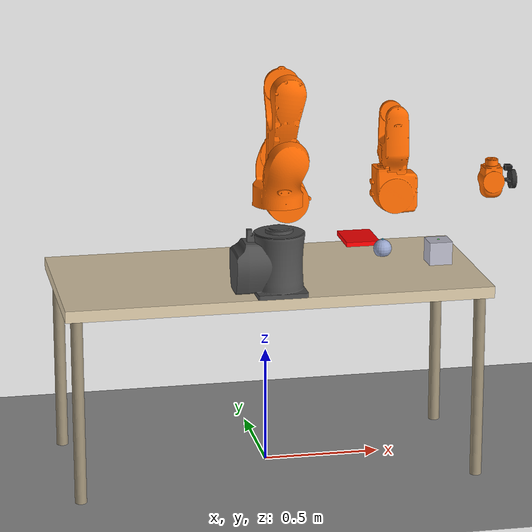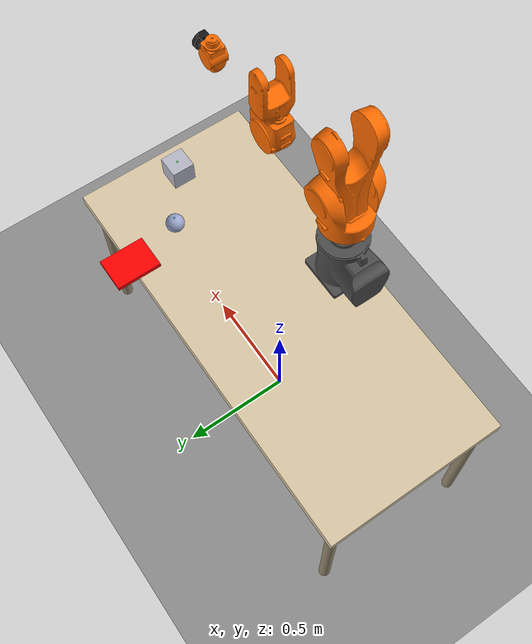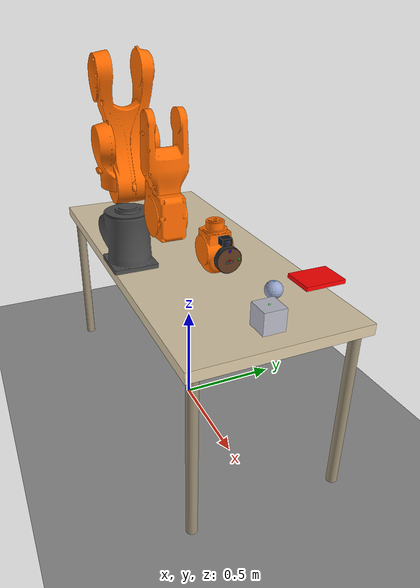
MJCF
<mujoco model="kuka_scene">

  <!-- ── Default free-camera framing ─────────────────────────────── -->
  <!-- center = middle of the table workspace, extent = scene radius   -->
  <!-- This makes the viewer open already zoomed in on the scene.      -->
  <statistic center="0 0.1 0.9" extent="1.5"/>

  <!-- ── Physics options (Task 2.4) ──────────────────────────────── -->
  <!--
    timestep = 0.001 s  → 1000 Hz physics
    gravity  = -9.81 m/s² in Z
    integrator = RK4    → better stability for rigid kinematic chains
    solver = Newton (default for MuJoCo 3.x)
  -->
  <option timestep="0.001"
          gravity="0 0 -9.81"
          integrator="RK4"/>

  <!-- ── Component modules ────────────────────────────────────────── -->
  <include file="includes/arm.xml"/>
  <include file="includes/table.xml"/>
  <include file="includes/lights.xml"/>
  <include file="includes/objects.xml"/>

  <!-- ── Visual / render settings ────────────────────────────────── -->
  <visual>
    <global offwidth="1280" offheight="720"/>
    <!-- Dim headlight so directional key/fill lights define the mood -->
    <headlight ambient="0.15 0.15 0.15" diffuse="0.2 0.2 0.2" specular="0 0 0"/>
  </visual>

  <!-- ── EM attachment equality constraint (Phase 6, Task 6.1) ──────── -->
  <!-- Single weld between em_pad and metal_box, initially inactive.     -->
  <!-- relpose is overwritten at runtime by em_activate() with the       -->
  <!-- CURRENT relative pose of the box w.r.t. em_pad at snap time —    -->
  <!-- so the box stays exactly at the EM face and is never rotated.     -->
  <equality>
    <weld name="em_weld" body1="em_pad" body2="metal_box"
          relpose="0 0 0 1 0 0 0" active="false"/>
  </equality>

  <!-- ── World-level geometry (not part of any swappable component) -->
  <worldbody>

    <!-- Ground plane: 10 m × 10 m, medium grey -->
    <geom name="floor"
          type="plane"
          size="5 5 0.1"
          rgba="0.55 0.55 0.55 1"
          condim="3"
          contype="2" conaffinity="3"/>

  </worldbody>

  <sensor>
    <!-- 7.1  Joint position sensors (1 float each) -->
    <jointpos name="sensor_pos_A1" joint="joint_a1"/>
    <jointpos name="sensor_pos_A2" joint="joint_a2"/>
    <jointpos name="sensor_pos_A3" joint="joint_a3"/>
    <jointpos name="sensor_pos_A4" joint="joint_a4"/>
    <jointpos name="sensor_pos_A5" joint="joint_a5"/>
    <jointpos name="sensor_pos_A6" joint="joint_a6"/>

    <!-- 7.2  Joint velocity sensors (1 float each) -->
    <jointvel name="sensor_vel_A1" joint="joint_a1"/>
    <jointvel name="sensor_vel_A2" joint="joint_a2"/>
    <jointvel name="sensor_vel_A3" joint="joint_a3"/>
    <jointvel name="sensor_vel_A4" joint="joint_a4"/>
    <jointvel name="sensor_vel_A5" joint="joint_a5"/>
    <jointvel name="sensor_vel_A6" joint="joint_a6"/>

    <!-- 7.3  Actuator force/torque sensors (1 float each) -->
    <actuatorfrc name="sensor_torque_A1" actuator="act_a1"/>
    <actuatorfrc name="sensor_torque_A2" actuator="act_a2"/>
    <actuatorfrc name="sensor_torque_A3" actuator="act_a3"/>
    <actuatorfrc name="sensor_torque_A4" actuator="act_a4"/>
    <actuatorfrc name="sensor_torque_A5" actuator="act_a5"/>
    <actuatorfrc name="sensor_torque_A6" actuator="act_a6"/>

    <!-- 7.4  End-effector force + torque at EM contact site (3 floats each) -->
    <force  name="sensor_ee_force"  site="em_contact_site"/>
    <torque name="sensor_ee_torque" site="em_contact_site"/>

    <!-- 7.5  Proximity rangefinder at EM contact site (1 float) -->
    <!--      Reports distance to first geom hit along site's local +Z axis. -->
    <!--      Returns -1.0 when no surface is hit within range.              -->
    <rangefinder name="sensor_proximity" site="em_contact_site"/>
  </sensor>

</mujoco>

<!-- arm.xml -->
<mujoco>
  <compiler meshdir="../assets/urdf/meshes/" angle="radian"/>

  <asset>
    <mesh name="base_link" content_type="model/stl" file="base_link.stl"/>
    <mesh name="link_1"    content_type="model/stl" file="link_1.stl"/>
    <mesh name="link_2"    content_type="model/stl" file="link_2.stl"/>
    <mesh name="link_3"    content_type="model/stl" file="link_3.stl"/>
    <mesh name="link_4"    content_type="model/stl" file="link_4.stl"/>
    <mesh name="link_5"    content_type="model/stl" file="link_5.stl"/>
    <mesh name="link_6"    content_type="model/stl" file="link_6.stl"/>
  </asset>

  <worldbody>
    <!--
      kuka_base is the single configuration point for arm placement.
      Change pos here to mount the arm anywhere in the world.
    -->
    <body name="kuka_base" pos="0 -0.3 0.85">

      <!-- Base link: fixed pedestal — collision disabled (it's bolted to the table) -->
      <geom type="mesh" rgba="0.3 0.3 0.3 1" mesh="base_link"
            contype="0" conaffinity="0"/>

      <!-- Arm kinematic chain -->
      <body name="link_1" pos="0 0 0.4">
        <joint name="joint_a1" pos="0 0 0" axis="0 0 -1" range="-2.96706 2.96706"/>
        <geom type="mesh" rgba="1 0.42 0 1" mesh="link_1"
              contype="1" conaffinity="2"/>

        <body name="link_2" pos="0.025 0 0">
          <joint name="joint_a2" pos="0 0 0" axis="0 1 0" range="-3.31613 0.785398"/>
          <geom type="mesh" rgba="1 0.42 0 1" mesh="link_2"
                contype="1" conaffinity="2"/>

          <body name="link_3" pos="0.455 0 0">
            <joint name="joint_a3" pos="0 0 0" axis="0 1 0" range="-2.0944 2.72271"/>
            <geom type="mesh" rgba="1 0.42 0 1" mesh="link_3"
                  contype="1" conaffinity="2"/>

            <body name="link_4" pos="0 0 0.035">
              <joint name="joint_a4" pos="0 0 0" axis="-1 0 0" range="-3.22886 3.22886"/>
              <geom type="mesh" rgba="1 0.42 0 1" mesh="link_4"
                    contype="1" conaffinity="2"/>

              <body name="link_5" pos="0.42 0 0">
                <joint name="joint_a5" pos="0 0 0" axis="0 1 0" range="-2.0944 2.0944"/>
                <geom type="mesh" rgba="1 0.42 0 1" mesh="link_5"
                      contype="1" conaffinity="2"/>

                <body name="link_6" pos="0.08 0 0">
                  <joint name="joint_a6" pos="0 0 0" axis="-1 0 0" range="-6.10865 6.10865"/>
                  <geom type="mesh" rgba="0.3 0.3 0.3 1" mesh="link_6"
                        contype="1" conaffinity="2"/>

                  <body name="em_pad" pos="0.01 0 0">
                    <!-- Cylinder: local X axis, radius=0.04, half-length=0.01 -->
                    <geom name="em_pad_geom"
                          type="cylinder"
                          fromto="-0.01 0 0  0.01 0 0"
                          size="0.04"
                          rgba="0.18 0.18 0.18 1"
                          contype="1" conaffinity="2"/>

                    <site name="em_contact_site"
                          pos="0.01 0 0"
                          euler="0 90 0"
                          size="0.005" rgba="1 0 0 0.5"/>
                    <site name="em_dot_b"
                          pos="0.01 0.03 0"
                          size="0.005" rgba="0 1 0 0.5"/>
                    <site name="em_dot_c"
                          pos="0.01 0 0.03"
                          size="0.005" rgba="0 0 1 0.5"/>

                    <geom name="em_touch_geom"
                          type="cylinder"
                          fromto="0.008 0 0  0.011 0 0"
                          size="0.038"
                          rgba="1 0.4 0 0.25"
                          condim="1"
                          contype="8" conaffinity="4"/>

                    <site name="em_touch_site"
                          pos="0.01 0 0"
                          size="0.004"
                          rgba="1 0.5 0 0"/>

                    <!-- Camera body housing (visual only) -->
                    <geom name="cam_housing"
                          type="box"
                          pos="-0.02 0 0.05"
                          size="0.014 0.016 0.011"
                          rgba="0.08 0.08 0.08 1"
                          contype="0" conaffinity="0"/>

                    <!-- Lens (visual only) — dark-blue sphere at front face of housing -->
                    <geom name="cam_lens"
                          type="sphere"
                          pos="-0.006 0 0.05"
                          size="0.007"
                          rgba="0.10 0.14 0.30 1"
                          contype="0" conaffinity="0"/>

                    <!-- Egocentric VLA camera — optical axis tilted 20° downward -->
                    <camera name="cam_wrist"
                            pos="-0.02 0 0.10"
                            xyaxes="0 1 0  -0.342 0 -0.940"
                            fovy="80"/>

                  </body><!-- em_pad -->

                </body><!-- link_6 -->

              </body><!-- link_5 -->
            </body><!-- link_4 -->
          </body><!-- link_3 -->
        </body><!-- link_2 -->
      </body><!-- link_1 -->

    </body><!-- kuka_base -->
  </worldbody>

  <actuator>
    <position name="act_a1" joint="joint_a1" kp="500" kv="10" forcelimited="true" forcerange="-500 500"/>
    <position name="act_a2" joint="joint_a2" kp="500" kv="10" forcelimited="true" forcerange="-500 500"/>
    <position name="act_a3" joint="joint_a3" kp="500" kv="10" forcelimited="true" forcerange="-300 300"/>
    <position name="act_a4" joint="joint_a4" kp="300" kv="10" forcelimited="true" forcerange="-200 200"/>
    <position name="act_a5" joint="joint_a5" kp="200" kv="10" forcelimited="true" forcerange="-100 100"/>
    <position name="act_a6" joint="joint_a6" kp="100" kv="10" forcelimited="true" forcerange="-50  50"/>
  </actuator>

</mujoco>

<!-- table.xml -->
<mujoco>
  <asset>
    <material name="table_wood"
              rgba="0.85 0.78 0.65 1"
              specular="0.1"
              shininess="0.15"/>
    <material name="table_leg"
              rgba="0.6 0.55 0.45 1"
              specular="0.05"
              shininess="0.1"/>
  </asset>

  <worldbody>

    <!-- Table: fixed body (no joints) centred at origin -->
    <body name="table" pos="0 0 0">

      <!-- Tabletop slab: surface at Z=0.85, half-thickness 0.025 → centre 0.825 -->
      <geom name="tabletop"
            type="box"
            size="0.90 0.40 0.025"
            pos="0 0 0.825"
            material="table_wood"
            condim="3"
            contype="2" conaffinity="3"/>

      <!-- Four legs at corners (X ±0.85, Y ±0.35) -->
      <geom name="leg_fl"
            type="cylinder"
            size="0.025 0.4"
            pos=" 0.85  0.35 0.4"
            material="table_leg"/>
      <geom name="leg_fr"
            type="cylinder"
            size="0.025 0.4"
            pos=" 0.85 -0.35 0.4"
            material="table_leg"/>
      <geom name="leg_bl"
            type="cylinder"
            size="0.025 0.4"
            pos="-0.85  0.35 0.4"
            material="table_leg"/>
      <geom name="leg_br"
            type="cylinder"
            size="0.025 0.4"
            pos="-0.85 -0.35 0.4"
            material="table_leg"/>

    </body>

  </worldbody>
</mujoco>

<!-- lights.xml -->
<mujoco>
  <worldbody>

    <!-- Key light: overhead, casts shadows -->
    <light name="key"
           pos="0 0 4"
           dir="0 0 -1"
           diffuse="0.9 0.9 0.9"
           specular="0.3 0.3 0.3"
           directional="true"
           castshadow="true"/>

    <!-- Fill light: front-left, softens harsh shadows -->
    <light name="fill"
           pos="2 -2 3"
           dir="-0.5 0.5 -1"
           diffuse="0.45 0.45 0.45"
           specular="0 0 0"
           directional="true"
           castshadow="false"/>

  </worldbody>
</mujoco>

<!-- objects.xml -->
<mujoco>

  <asset>
    <material name="metal_box_mat"
              rgba="0.72 0.72 0.78 1"
              specular="0.6"
              shininess="0.4"/>
    <material name="metal_sphere_mat"
              rgba="0.60 0.65 0.80 1"
              specular="0.7"
              shininess="0.5"/>
    <material name="target_zone_mat"
              rgba="1.0 0.0 0.0 1"
              specular="0.05"
              shininess="0.1"/>
  </asset>

  <worldbody>

    <!--
      ── Metal box (Phase 5, Task 5.1) ──────────────────────────────────
      freejoint → box can move under physics.
      DEFAULT pos overridden by randomize_scene() before first mj_step.
    -->
    <!-- Box default: directly under EM snap-pose position (X=0.76, Y=0) on table surface -->
    <body name="metal_box" pos="0.76 0 0.90">
      <freejoint name="box_freejoint"/>

      <geom name="box_geom"
            type="box"
            size="0.05 0.05 0.05"
            mass="0.5"
            material="metal_box_mat"
            friction="0.8 0.005 0.0001"
            condim="6"
            contype="4" conaffinity="6"/>

      <site name="box_top_site"
            pos="0 0 0.05"
            size="0.005"
            rgba="0 1 0 0.5"/>
    </body><!-- metal_box -->

    <body name="metal_sphere" pos="0.55 0.15 0.88">
      <freejoint name="sphere_freejoint"/>

      <geom name="sphere_geom"
            type="sphere"
            size="0.04"
            mass="0.3"
            material="metal_sphere_mat"
            friction="0.8 0.005 0.0001"
            condim="6"
            contype="4" conaffinity="6"/>

      <!-- Reference site at top of sphere (body local +Z). -->
      <site name="sphere_top_site"
            pos="0 0 0.04"
            size="0.005"
            rgba="0 0.8 1 0.5"/>
    </body><!-- metal_sphere -->

    <!-- Target zone: far side of table, arm must rotate A1 ~90° to reach it -->
    <body name="target_zone" pos="0.5 0.4 0.86">
      <geom name="target_geom"
            type="box"
            size="0.075 0.1 0.01"
            material="target_zone_mat"
            condim="3"
            contype="2" conaffinity="3"/>

      <!-- Site for touch sensor — at the top face of the target pad -->
      <site name="target_touch_site"
            pos="0 0 0.01"
            size="0.005"
            rgba="1 1 0 0"/>
    </body><!-- target_zone -->

  </worldbody>

  <!--
    Touch sensor on the target zone (Phase 5, Task 5.6).
    Outputs summed normal contact force on target_touch_site body.
  -->
  <sensor>
    <touch name="target_touch_sensor" site="target_touch_site"/>
  </sensor>

</mujoco>
